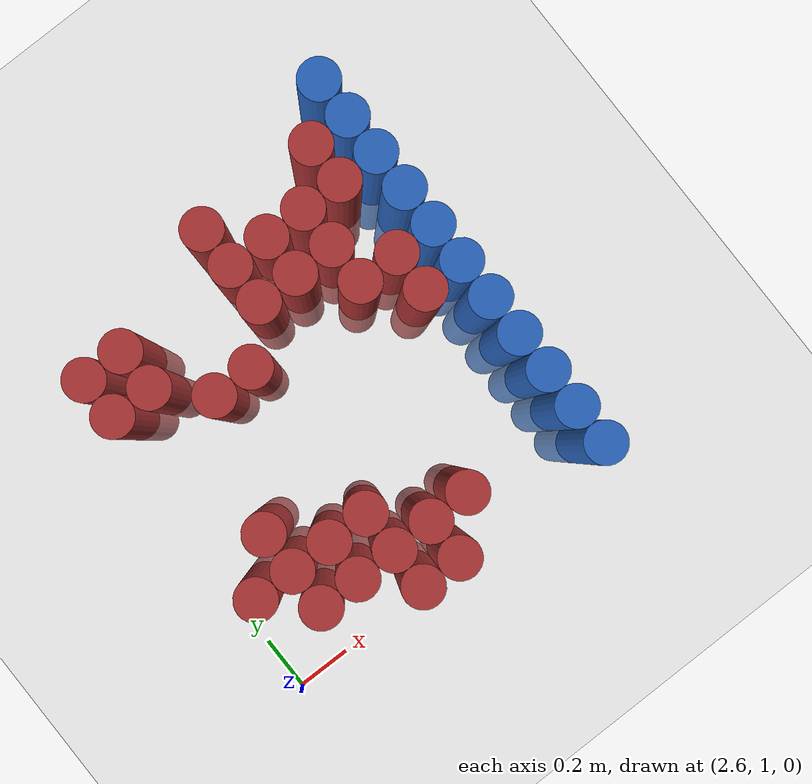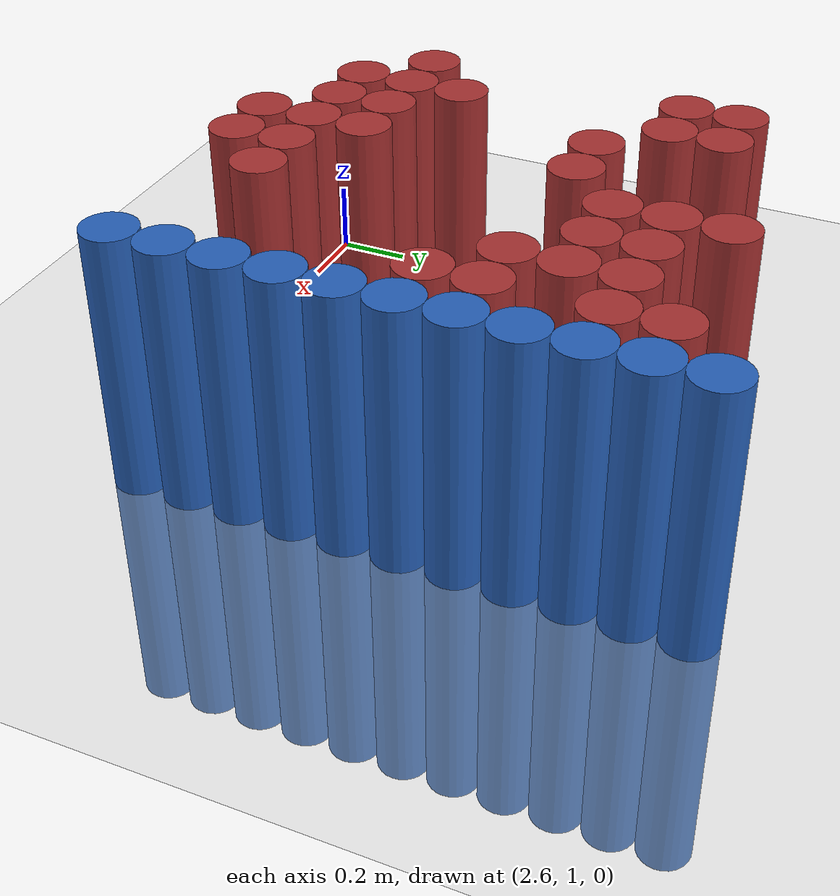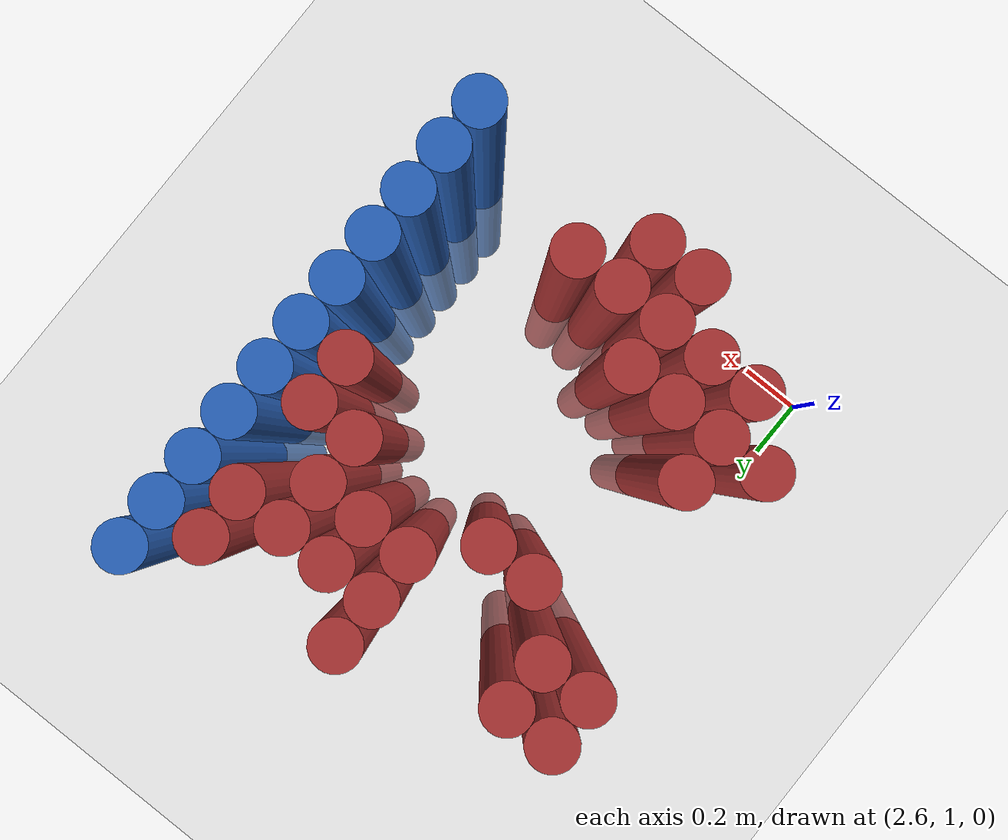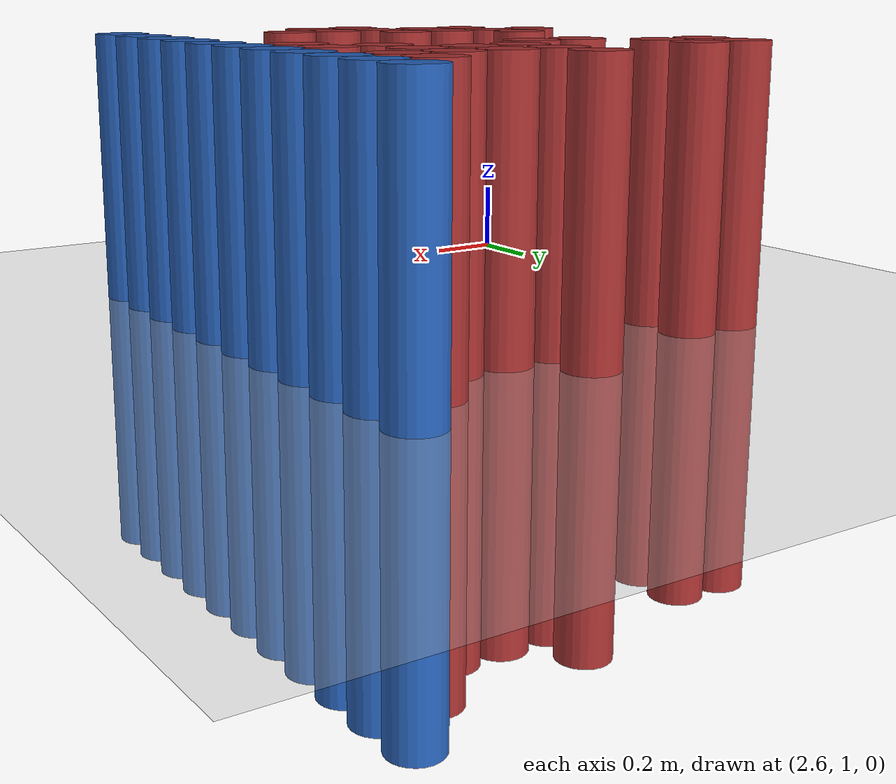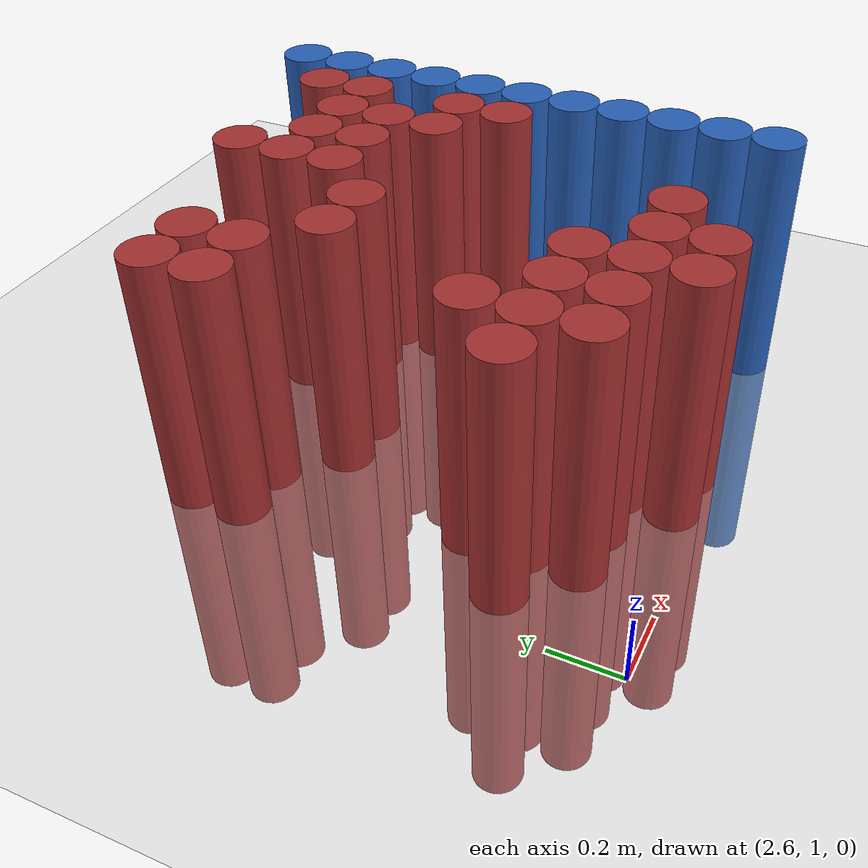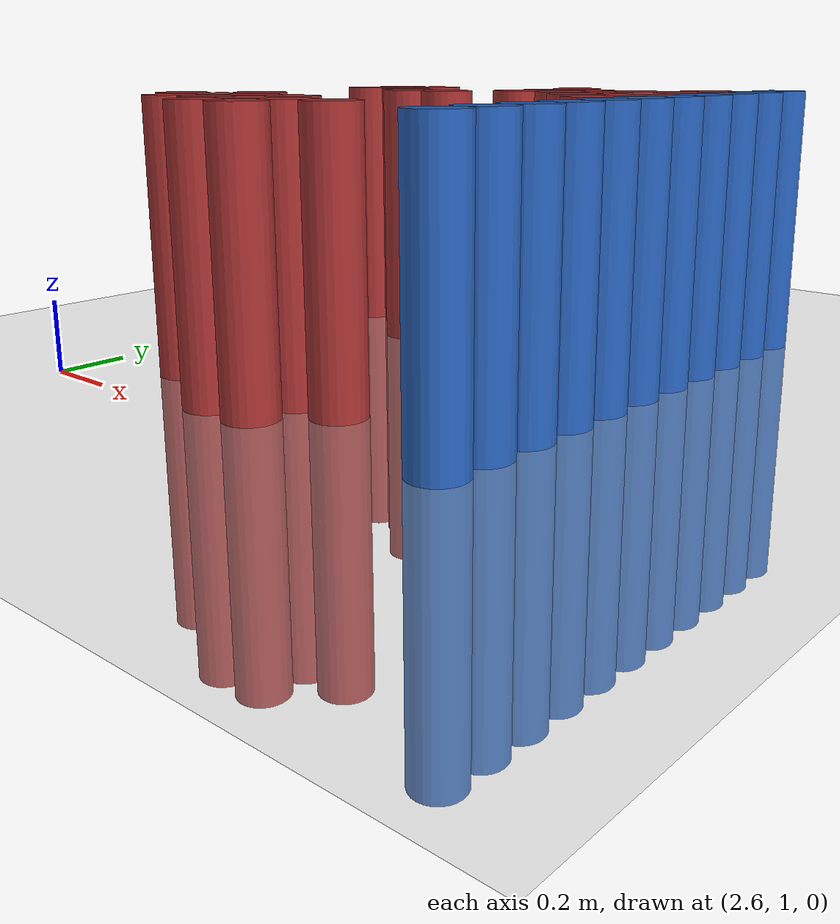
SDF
<sdf version="1.6">
 <world name="default">
  <model name="ground_plane">
   <static>1</static>
   <link name="link">
    <collision name="collision">
     <geometry><plane><normal>0 0 1</normal><size>100 100</size></plane></geometry>
     <surface><friction><ode><mu>100</mu><mu2>50</mu2></ode></friction></surface>
    </collision>
    <visual name="visual">
     <cast_shadows>0</cast_shadows>
     <geometry><plane><normal>0 0 1</normal><size>100 100</size></plane></geometry>
     <material>
      <script><uri>file://media/materials/scripts/gazebo.material</uri><name>Gazebo/Grey</name></script>
     </material>
    </visual>
   </link>
  </model>
  <model name="unit_cylinder_130">
   <static>1</static>
   <pose>3.925000 1.225000 0.000000 0.000000 0.000000 0.000000</pose>
   <link name="link">
    <inertial>
     <mass>1</mass>
     <inertia><ixx>0.145833</ixx><ixy>0</ixy><ixz>0</ixz><iyy>0.145833</iyy><iyz>0</iyz><izz>0.125</izz></inertia>
    </inertial>
    <collision name="collision">
     <geometry><cylinder><radius>0.075000</radius><length>1.5</length></cylinder></geometry>
    </collision>
    <visual name="visual">
     <geometry><cylinder><radius>0.075000</radius><length>1.5</length></cylinder></geometry>
     <material>
      <ambient>0.152000 0.379000 0.720000 1</ambient>
      <diffuse>0.152000 0.379000 0.720000 1</diffuse>
     </material>
     <material>
      <script><name>Gazebo/Grey</name><uri>file://media/materials/scripts/gazebo.material</uri></script>
     </material>
    </visual>
   </link>
  </model>
  <model name="unit_cylinder_132">
   <static>1</static>
   <pose>3.925000 1.375000 0.000000 0.000000 0.000000 0.000000</pose>
   <link name="link">
    <inertial>
     <mass>1</mass>
     <inertia><ixx>0.145833</ixx><ixy>0</ixy><ixz>0</ixz><iyy>0.145833</iyy><iyz>0</iyz><izz>0.125</izz></inertia>
    </inertial>
    <collision name="collision">
     <geometry><cylinder><radius>0.075000</radius><length>1.5</length></cylinder></geometry>
    </collision>
    <visual name="visual">
     <geometry><cylinder><radius>0.075000</radius><length>1.5</length></cylinder></geometry>
     <material>
      <ambient>0.152000 0.379000 0.720000 1</ambient>
      <diffuse>0.152000 0.379000 0.720000 1</diffuse>
     </material>
     <material>
      <script><name>Gazebo/Grey</name><uri>file://media/materials/scripts/gazebo.material</uri></script>
     </material>
    </visual>
   </link>
  </model>
  <model name="unit_cylinder_134">
   <static>1</static>
   <pose>3.925000 1.525000 0.000000 0.000000 0.000000 0.000000</pose>
   <link name="link">
    <inertial>
     <mass>1</mass>
     <inertia><ixx>0.145833</ixx><ixy>0</ixy><ixz>0</ixz><iyy>0.145833</iyy><iyz>0</iyz><izz>0.125</izz></inertia>
    </inertial>
    <collision name="collision">
     <geometry><cylinder><radius>0.075000</radius><length>1.5</length></cylinder></geometry>
    </collision>
    <visual name="visual">
     <geometry><cylinder><radius>0.075000</radius><length>1.5</length></cylinder></geometry>
     <material>
      <ambient>0.152000 0.379000 0.720000 1</ambient>
      <diffuse>0.152000 0.379000 0.720000 1</diffuse>
     </material>
     <material>
      <script><name>Gazebo/Grey</name><uri>file://media/materials/scripts/gazebo.material</uri></script>
     </material>
    </visual>
   </link>
  </model>
  <model name="unit_cylinder_136">
   <static>1</static>
   <pose>3.925000 1.675000 0.000000 0.000000 0.000000 0.000000</pose>
   <link name="link">
    <inertial>
     <mass>1</mass>
     <inertia><ixx>0.145833</ixx><ixy>0</ixy><ixz>0</ixz><iyy>0.145833</iyy><iyz>0</iyz><izz>0.125</izz></inertia>
    </inertial>
    <collision name="collision">
     <geometry><cylinder><radius>0.075000</radius><length>1.5</length></cylinder></geometry>
    </collision>
    <visual name="visual">
     <geometry><cylinder><radius>0.075000</radius><length>1.5</length></cylinder></geometry>
     <material>
      <ambient>0.152000 0.379000 0.720000 1</ambient>
      <diffuse>0.152000 0.379000 0.720000 1</diffuse>
     </material>
     <material>
      <script><name>Gazebo/Grey</name><uri>file://media/materials/scripts/gazebo.material</uri></script>
     </material>
    </visual>
   </link>
  </model>
  <model name="unit_cylinder_138">
   <static>1</static>
   <pose>3.925000 1.825000 0.000000 0.000000 0.000000 0.000000</pose>
   <link name="link">
    <inertial>
     <mass>1</mass>
     <inertia><ixx>0.145833</ixx><ixy>0</ixy><ixz>0</ixz><iyy>0.145833</iyy><iyz>0</iyz><izz>0.125</izz></inertia>
    </inertial>
    <collision name="collision">
     <geometry><cylinder><radius>0.075000</radius><length>1.5</length></cylinder></geometry>
    </collision>
    <visual name="visual">
     <geometry><cylinder><radius>0.075000</radius><length>1.5</length></cylinder></geometry>
     <material>
      <ambient>0.152000 0.379000 0.720000 1</ambient>
      <diffuse>0.152000 0.379000 0.720000 1</diffuse>
     </material>
     <material>
      <script><name>Gazebo/Grey</name><uri>file://media/materials/scripts/gazebo.material</uri></script>
     </material>
    </visual>
   </link>
  </model>
  <model name="unit_cylinder_140">
   <static>1</static>
   <pose>3.925000 1.975000 0.000000 0.000000 0.000000 0.000000</pose>
   <link name="link">
    <inertial>
     <mass>1</mass>
     <inertia><ixx>0.145833</ixx><ixy>0</ixy><ixz>0</ixz><iyy>0.145833</iyy><iyz>0</iyz><izz>0.125</izz></inertia>
    </inertial>
    <collision name="collision">
     <geometry><cylinder><radius>0.075000</radius><length>1.5</length></cylinder></geometry>
    </collision>
    <visual name="visual">
     <geometry><cylinder><radius>0.075000</radius><length>1.5</length></cylinder></geometry>
     <material>
      <ambient>0.152000 0.379000 0.720000 1</ambient>
      <diffuse>0.152000 0.379000 0.720000 1</diffuse>
     </material>
     <material>
      <script><name>Gazebo/Grey</name><uri>file://media/materials/scripts/gazebo.material</uri></script>
     </material>
    </visual>
   </link>
  </model>
  <model name="unit_cylinder_142">
   <static>1</static>
   <pose>3.925000 2.125000 0.000000 0.000000 0.000000 0.000000</pose>
   <link name="link">
    <inertial>
     <mass>1</mass>
     <inertia><ixx>0.145833</ixx><ixy>0</ixy><ixz>0</ixz><iyy>0.145833</iyy><iyz>0</iyz><izz>0.125</izz></inertia>
    </inertial>
    <collision name="collision">
     <geometry><cylinder><radius>0.075000</radius><length>1.5</length></cylinder></geometry>
    </collision>
    <visual name="visual">
     <geometry><cylinder><radius>0.075000</radius><length>1.5</length></cylinder></geometry>
     <material>
      <ambient>0.152000 0.379000 0.720000 1</ambient>
      <diffuse>0.152000 0.379000 0.720000 1</diffuse>
     </material>
     <material>
      <script><name>Gazebo/Grey</name><uri>file://media/materials/scripts/gazebo.material</uri></script>
     </material>
    </visual>
   </link>
  </model>
  <model name="unit_cylinder_144">
   <static>1</static>
   <pose>3.925000 2.275000 0.000000 0.000000 0.000000 0.000000</pose>
   <link name="link">
    <inertial>
     <mass>1</mass>
     <inertia><ixx>0.145833</ixx><ixy>0</ixy><ixz>0</ixz><iyy>0.145833</iyy><iyz>0</iyz><izz>0.125</izz></inertia>
    </inertial>
    <collision name="collision">
     <geometry><cylinder><radius>0.075000</radius><length>1.5</length></cylinder></geometry>
    </collision>
    <visual name="visual">
     <geometry><cylinder><radius>0.075000</radius><length>1.5</length></cylinder></geometry>
     <material>
      <ambient>0.152000 0.379000 0.720000 1</ambient>
      <diffuse>0.152000 0.379000 0.720000 1</diffuse>
     </material>
     <material>
      <script><name>Gazebo/Grey</name><uri>file://media/materials/scripts/gazebo.material</uri></script>
     </material>
    </visual>
   </link>
  </model>
  <model name="unit_cylinder_146">
   <static>1</static>
   <pose>3.925000 2.425000 0.000000 0.000000 0.000000 0.000000</pose>
   <link name="link">
    <inertial>
     <mass>1</mass>
     <inertia><ixx>0.145833</ixx><ixy>0</ixy><ixz>0</ixz><iyy>0.145833</iyy><iyz>0</iyz><izz>0.125</izz></inertia>
    </inertial>
    <collision name="collision">
     <geometry><cylinder><radius>0.075000</radius><length>1.5</length></cylinder></geometry>
    </collision>
    <visual name="visual">
     <geometry><cylinder><radius>0.075000</radius><length>1.5</length></cylinder></geometry>
     <material>
      <ambient>0.152000 0.379000 0.720000 1</ambient>
      <diffuse>0.152000 0.379000 0.720000 1</diffuse>
     </material>
     <material>
      <script><name>Gazebo/Grey</name><uri>file://media/materials/scripts/gazebo.material</uri></script>
     </material>
    </visual>
   </link>
  </model>
  <model name="unit_cylinder_148">
   <static>1</static>
   <pose>3.925000 2.575000 0.000000 0.000000 0.000000 0.000000</pose>
   <link name="link">
    <inertial>
     <mass>1</mass>
     <inertia><ixx>0.145833</ixx><ixy>0</ixy><ixz>0</ixz><iyy>0.145833</iyy><iyz>0</iyz><izz>0.125</izz></inertia>
    </inertial>
    <collision name="collision">
     <geometry><cylinder><radius>0.075000</radius><length>1.5</length></cylinder></geometry>
    </collision>
    <visual name="visual">
     <geometry><cylinder><radius>0.075000</radius><length>1.5</length></cylinder></geometry>
     <material>
      <ambient>0.152000 0.379000 0.720000 1</ambient>
      <diffuse>0.152000 0.379000 0.720000 1</diffuse>
     </material>
     <material>
      <script><name>Gazebo/Grey</name><uri>file://media/materials/scripts/gazebo.material</uri></script>
     </material>
    </visual>
   </link>
  </model>
  <model name="unit_cylinder_516">
   <static>1</static>
   <pose>2.725000 1.375000 0.000000 0.000000 0.000000 0.000000</pose>
   <link name="link">
    <inertial>
     <mass>1</mass>
     <inertia><ixx>0.145833</ixx><ixy>0</ixy><ixz>0</ixz><iyy>0.145833</iyy><iyz>0</iyz><izz>0.125</izz></inertia>
    </inertial>
    <collision name="collision">
     <geometry><cylinder><radius>0.075000</radius><length>1.5</length></cylinder></geometry>
    </collision>
    <visual name="visual">
     <geometry><cylinder><radius>0.075000</radius><length>1.5</length></cylinder></geometry>
     <material>
      <ambient>0.648000 0.192000 0.192000 1</ambient>
      <diffuse>0.648000 0.192000 0.192000 1</diffuse>
     </material>
     <material>
      <script><name>Gazebo/Grey</name><uri>file://media/materials/scripts/gazebo.material</uri></script>
     </material>
    </visual>
   </link>
  </model>
  <model name="unit_cylinder_517">
   <static>1</static>
   <pose>2.725000 2.125000 0.000000 0.000000 0.000000 0.000000</pose>
   <link name="link">
    <inertial>
     <mass>1</mass>
     <inertia><ixx>0.145833</ixx><ixy>0</ixy><ixz>0</ixz><iyy>0.145833</iyy><iyz>0</iyz><izz>0.125</izz></inertia>
    </inertial>
    <collision name="collision">
     <geometry><cylinder><radius>0.075000</radius><length>1.5</length></cylinder></geometry>
    </collision>
    <visual name="visual">
     <geometry><cylinder><radius>0.075000</radius><length>1.5</length></cylinder></geometry>
     <material>
      <ambient>0.648000 0.192000 0.192000 1</ambient>
      <diffuse>0.648000 0.192000 0.192000 1</diffuse>
     </material>
     <material>
      <script><name>Gazebo/Grey</name><uri>file://media/materials/scripts/gazebo.material</uri></script>
     </material>
    </visual>
   </link>
  </model>
  <model name="unit_cylinder_518">
   <static>1</static>
   <pose>2.725000 2.275000 0.000000 0.000000 0.000000 0.000000</pose>
   <link name="link">
    <inertial>
     <mass>1</mass>
     <inertia><ixx>0.145833</ixx><ixy>0</ixy><ixz>0</ixz><iyy>0.145833</iyy><iyz>0</iyz><izz>0.125</izz></inertia>
    </inertial>
    <collision name="collision">
     <geometry><cylinder><radius>0.075000</radius><length>1.5</length></cylinder></geometry>
    </collision>
    <visual name="visual">
     <geometry><cylinder><radius>0.075000</radius><length>1.5</length></cylinder></geometry>
     <material>
      <ambient>0.648000 0.192000 0.192000 1</ambient>
      <diffuse>0.648000 0.192000 0.192000 1</diffuse>
     </material>
     <material>
      <script><name>Gazebo/Grey</name><uri>file://media/materials/scripts/gazebo.material</uri></script>
     </material>
    </visual>
   </link>
  </model>
  <model name="unit_cylinder_524">
   <static>1</static>
   <pose>2.875000 1.225000 0.000000 0.000000 0.000000 0.000000</pose>
   <link name="link">
    <inertial>
     <mass>1</mass>
     <inertia><ixx>0.145833</ixx><ixy>0</ixy><ixz>0</ixz><iyy>0.145833</iyy><iyz>0</iyz><izz>0.125</izz></inertia>
    </inertial>
    <collision name="collision">
     <geometry><cylinder><radius>0.075000</radius><length>1.5</length></cylinder></geometry>
    </collision>
    <visual name="visual">
     <geometry><cylinder><radius>0.075000</radius><length>1.5</length></cylinder></geometry>
     <material>
      <ambient>0.648000 0.192000 0.192000 1</ambient>
      <diffuse>0.648000 0.192000 0.192000 1</diffuse>
     </material>
     <material>
      <script><name>Gazebo/Grey</name><uri>file://media/materials/scripts/gazebo.material</uri></script>
     </material>
    </visual>
   </link>
  </model>
  <model name="unit_cylinder_525">
   <static>1</static>
   <pose>2.875000 1.375000 0.000000 0.000000 0.000000 0.000000</pose>
   <link name="link">
    <inertial>
     <mass>1</mass>
     <inertia><ixx>0.145833</ixx><ixy>0</ixy><ixz>0</ixz><iyy>0.145833</iyy><iyz>0</iyz><izz>0.125</izz></inertia>
    </inertial>
    <collision name="collision">
     <geometry><cylinder><radius>0.075000</radius><length>1.5</length></cylinder></geometry>
    </collision>
    <visual name="visual">
     <geometry><cylinder><radius>0.075000</radius><length>1.5</length></cylinder></geometry>
     <material>
      <ambient>0.648000 0.192000 0.192000 1</ambient>
      <diffuse>0.648000 0.192000 0.192000 1</diffuse>
     </material>
     <material>
      <script><name>Gazebo/Grey</name><uri>file://media/materials/scripts/gazebo.material</uri></script>
     </material>
    </visual>
   </link>
  </model>
  <model name="unit_cylinder_526">
   <static>1</static>
   <pose>2.875000 1.525000 0.000000 0.000000 0.000000 0.000000</pose>
   <link name="link">
    <inertial>
     <mass>1</mass>
     <inertia><ixx>0.145833</ixx><ixy>0</ixy><ixz>0</ixz><iyy>0.145833</iyy><iyz>0</iyz><izz>0.125</izz></inertia>
    </inertial>
    <collision name="collision">
     <geometry><cylinder><radius>0.075000</radius><length>1.5</length></cylinder></geometry>
    </collision>
    <visual name="visual">
     <geometry><cylinder><radius>0.075000</radius><length>1.5</length></cylinder></geometry>
     <material>
      <ambient>0.648000 0.192000 0.192000 1</ambient>
      <diffuse>0.648000 0.192000 0.192000 1</diffuse>
     </material>
     <material>
      <script><name>Gazebo/Grey</name><uri>file://media/materials/scripts/gazebo.material</uri></script>
     </material>
    </visual>
   </link>
  </model>
  <model name="unit_cylinder_527">
   <static>1</static>
   <pose>2.875000 2.125000 0.000000 0.000000 0.000000 0.000000</pose>
   <link name="link">
    <inertial>
     <mass>1</mass>
     <inertia><ixx>0.145833</ixx><ixy>0</ixy><ixz>0</ixz><iyy>0.145833</iyy><iyz>0</iyz><izz>0.125</izz></inertia>
    </inertial>
    <collision name="collision">
     <geometry><cylinder><radius>0.075000</radius><length>1.5</length></cylinder></geometry>
    </collision>
    <visual name="visual">
     <geometry><cylinder><radius>0.075000</radius><length>1.5</length></cylinder></geometry>
     <material>
      <ambient>0.648000 0.192000 0.192000 1</ambient>
      <diffuse>0.648000 0.192000 0.192000 1</diffuse>
     </material>
     <material>
      <script><name>Gazebo/Grey</name><uri>file://media/materials/scripts/gazebo.material</uri></script>
     </material>
    </visual>
   </link>
  </model>
  <model name="unit_cylinder_528">
   <static>1</static>
   <pose>2.875000 2.275000 0.000000 0.000000 0.000000 0.000000</pose>
   <link name="link">
    <inertial>
     <mass>1</mass>
     <inertia><ixx>0.145833</ixx><ixy>0</ixy><ixz>0</ixz><iyy>0.145833</iyy><iyz>0</iyz><izz>0.125</izz></inertia>
    </inertial>
    <collision name="collision">
     <geometry><cylinder><radius>0.075000</radius><length>1.5</length></cylinder></geometry>
    </collision>
    <visual name="visual">
     <geometry><cylinder><radius>0.075000</radius><length>1.5</length></cylinder></geometry>
     <material>
      <ambient>0.648000 0.192000 0.192000 1</ambient>
      <diffuse>0.648000 0.192000 0.192000 1</diffuse>
     </material>
     <material>
      <script><name>Gazebo/Grey</name><uri>file://media/materials/scripts/gazebo.material</uri></script>
     </material>
    </visual>
   </link>
  </model>
  <model name="unit_cylinder_532">
   <static>1</static>
   <pose>3.025000 1.225000 0.000000 0.000000 0.000000 0.000000</pose>
   <link name="link">
    <inertial>
     <mass>1</mass>
     <inertia><ixx>0.145833</ixx><ixy>0</ixy><ixz>0</ixz><iyy>0.145833</iyy><iyz>0</iyz><izz>0.125</izz></inertia>
    </inertial>
    <collision name="collision">
     <geometry><cylinder><radius>0.075000</radius><length>1.5</length></cylinder></geometry>
    </collision>
    <visual name="visual">
     <geometry><cylinder><radius>0.075000</radius><length>1.5</length></cylinder></geometry>
     <material>
      <ambient>0.648000 0.192000 0.192000 1</ambient>
      <diffuse>0.648000 0.192000 0.192000 1</diffuse>
     </material>
     <material>
      <script><name>Gazebo/Grey</name><uri>file://media/materials/scripts/gazebo.material</uri></script>
     </material>
    </visual>
   </link>
  </model>
  <model name="unit_cylinder_533">
   <static>1</static>
   <pose>3.025000 1.375000 0.000000 0.000000 0.000000 0.000000</pose>
   <link name="link">
    <inertial>
     <mass>1</mass>
     <inertia><ixx>0.145833</ixx><ixy>0</ixy><ixz>0</ixz><iyy>0.145833</iyy><iyz>0</iyz><izz>0.125</izz></inertia>
    </inertial>
    <collision name="collision">
     <geometry><cylinder><radius>0.075000</radius><length>1.5</length></cylinder></geometry>
    </collision>
    <visual name="visual">
     <geometry><cylinder><radius>0.075000</radius><length>1.5</length></cylinder></geometry>
     <material>
      <ambient>0.648000 0.192000 0.192000 1</ambient>
      <diffuse>0.648000 0.192000 0.192000 1</diffuse>
     </material>
     <material>
      <script><name>Gazebo/Grey</name><uri>file://media/materials/scripts/gazebo.material</uri></script>
     </material>
    </visual>
   </link>
  </model>
  <model name="unit_cylinder_534">
   <static>1</static>
   <pose>3.025000 1.975000 0.000000 0.000000 0.000000 0.000000</pose>
   <link name="link">
    <inertial>
     <mass>1</mass>
     <inertia><ixx>0.145833</ixx><ixy>0</ixy><ixz>0</ixz><iyy>0.145833</iyy><iyz>0</iyz><izz>0.125</izz></inertia>
    </inertial>
    <collision name="collision">
     <geometry><cylinder><radius>0.075000</radius><length>1.5</length></cylinder></geometry>
    </collision>
    <visual name="visual">
     <geometry><cylinder><radius>0.075000</radius><length>1.5</length></cylinder></geometry>
     <material>
      <ambient>0.648000 0.192000 0.192000 1</ambient>
      <diffuse>0.648000 0.192000 0.192000 1</diffuse>
     </material>
     <material>
      <script><name>Gazebo/Grey</name><uri>file://media/materials/scripts/gazebo.material</uri></script>
     </material>
    </visual>
   </link>
  </model>
  <model name="unit_cylinder_541">
   <static>1</static>
   <pose>3.175000 1.075000 0.000000 0.000000 0.000000 0.000000</pose>
   <link name="link">
    <inertial>
     <mass>1</mass>
     <inertia><ixx>0.145833</ixx><ixy>0</ixy><ixz>0</ixz><iyy>0.145833</iyy><iyz>0</iyz><izz>0.125</izz></inertia>
    </inertial>
    <collision name="collision">
     <geometry><cylinder><radius>0.075000</radius><length>1.5</length></cylinder></geometry>
    </collision>
    <visual name="visual">
     <geometry><cylinder><radius>0.075000</radius><length>1.5</length></cylinder></geometry>
     <material>
      <ambient>0.648000 0.192000 0.192000 1</ambient>
      <diffuse>0.648000 0.192000 0.192000 1</diffuse>
     </material>
     <material>
      <script><name>Gazebo/Grey</name><uri>file://media/materials/scripts/gazebo.material</uri></script>
     </material>
    </visual>
   </link>
  </model>
  <model name="unit_cylinder_542">
   <static>1</static>
   <pose>3.175000 1.225000 0.000000 0.000000 0.000000 0.000000</pose>
   <link name="link">
    <inertial>
     <mass>1</mass>
     <inertia><ixx>0.145833</ixx><ixy>0</ixy><ixz>0</ixz><iyy>0.145833</iyy><iyz>0</iyz><izz>0.125</izz></inertia>
    </inertial>
    <collision name="collision">
     <geometry><cylinder><radius>0.075000</radius><length>1.5</length></cylinder></geometry>
    </collision>
    <visual name="visual">
     <geometry><cylinder><radius>0.075000</radius><length>1.5</length></cylinder></geometry>
     <material>
      <ambient>0.648000 0.192000 0.192000 1</ambient>
      <diffuse>0.648000 0.192000 0.192000 1</diffuse>
     </material>
     <material>
      <script><name>Gazebo/Grey</name><uri>file://media/materials/scripts/gazebo.material</uri></script>
     </material>
    </visual>
   </link>
  </model>
  <model name="unit_cylinder_543">
   <static>1</static>
   <pose>3.175000 1.375000 0.000000 0.000000 0.000000 0.000000</pose>
   <link name="link">
    <inertial>
     <mass>1</mass>
     <inertia><ixx>0.145833</ixx><ixy>0</ixy><ixz>0</ixz><iyy>0.145833</iyy><iyz>0</iyz><izz>0.125</izz></inertia>
    </inertial>
    <collision name="collision">
     <geometry><cylinder><radius>0.075000</radius><length>1.5</length></cylinder></geometry>
    </collision>
    <visual name="visual">
     <geometry><cylinder><radius>0.075000</radius><length>1.5</length></cylinder></geometry>
     <material>
      <ambient>0.648000 0.192000 0.192000 1</ambient>
      <diffuse>0.648000 0.192000 0.192000 1</diffuse>
     </material>
     <material>
      <script><name>Gazebo/Grey</name><uri>file://media/materials/scripts/gazebo.material</uri></script>
     </material>
    </visual>
   </link>
  </model>
  <model name="unit_cylinder_544">
   <static>1</static>
   <pose>3.175000 1.975000 0.000000 0.000000 0.000000 0.000000</pose>
   <link name="link">
    <inertial>
     <mass>1</mass>
     <inertia><ixx>0.145833</ixx><ixy>0</ixy><ixz>0</ixz><iyy>0.145833</iyy><iyz>0</iyz><izz>0.125</izz></inertia>
    </inertial>
    <collision name="collision">
     <geometry><cylinder><radius>0.075000</radius><length>1.5</length></cylinder></geometry>
    </collision>
    <visual name="visual">
     <geometry><cylinder><radius>0.075000</radius><length>1.5</length></cylinder></geometry>
     <material>
      <ambient>0.648000 0.192000 0.192000 1</ambient>
      <diffuse>0.648000 0.192000 0.192000 1</diffuse>
     </material>
     <material>
      <script><name>Gazebo/Grey</name><uri>file://media/materials/scripts/gazebo.material</uri></script>
     </material>
    </visual>
   </link>
  </model>
  <model name="unit_cylinder_550">
   <static>1</static>
   <pose>3.325000 1.075000 0.000000 0.000000 0.000000 0.000000</pose>
   <link name="link">
    <inertial>
     <mass>1</mass>
     <inertia><ixx>0.145833</ixx><ixy>0</ixy><ixz>0</ixz><iyy>0.145833</iyy><iyz>0</iyz><izz>0.125</izz></inertia>
    </inertial>
    <collision name="collision">
     <geometry><cylinder><radius>0.075000</radius><length>1.5</length></cylinder></geometry>
    </collision>
    <visual name="visual">
     <geometry><cylinder><radius>0.075000</radius><length>1.5</length></cylinder></geometry>
     <material>
      <ambient>0.648000 0.192000 0.192000 1</ambient>
      <diffuse>0.648000 0.192000 0.192000 1</diffuse>
     </material>
     <material>
      <script><name>Gazebo/Grey</name><uri>file://media/materials/scripts/gazebo.material</uri></script>
     </material>
    </visual>
   </link>
  </model>
  <model name="unit_cylinder_551">
   <static>1</static>
   <pose>3.325000 1.225000 0.000000 0.000000 0.000000 0.000000</pose>
   <link name="link">
    <inertial>
     <mass>1</mass>
     <inertia><ixx>0.145833</ixx><ixy>0</ixy><ixz>0</ixz><iyy>0.145833</iyy><iyz>0</iyz><izz>0.125</izz></inertia>
    </inertial>
    <collision name="collision">
     <geometry><cylinder><radius>0.075000</radius><length>1.5</length></cylinder></geometry>
    </collision>
    <visual name="visual">
     <geometry><cylinder><radius>0.075000</radius><length>1.5</length></cylinder></geometry>
     <material>
      <ambient>0.648000 0.192000 0.192000 1</ambient>
      <diffuse>0.648000 0.192000 0.192000 1</diffuse>
     </material>
     <material>
      <script><name>Gazebo/Grey</name><uri>file://media/materials/scripts/gazebo.material</uri></script>
     </material>
    </visual>
   </link>
  </model>
  <model name="unit_cylinder_552">
   <static>1</static>
   <pose>3.325000 2.125000 0.000000 0.000000 0.000000 0.000000</pose>
   <link name="link">
    <inertial>
     <mass>1</mass>
     <inertia><ixx>0.145833</ixx><ixy>0</ixy><ixz>0</ixz><iyy>0.145833</iyy><iyz>0</iyz><izz>0.125</izz></inertia>
    </inertial>
    <collision name="collision">
     <geometry><cylinder><radius>0.075000</radius><length>1.5</length></cylinder></geometry>
    </collision>
    <visual name="visual">
     <geometry><cylinder><radius>0.075000</radius><length>1.5</length></cylinder></geometry>
     <material>
      <ambient>0.648000 0.192000 0.192000 1</ambient>
      <diffuse>0.648000 0.192000 0.192000 1</diffuse>
     </material>
     <material>
      <script><name>Gazebo/Grey</name><uri>file://media/materials/scripts/gazebo.material</uri></script>
     </material>
    </visual>
   </link>
  </model>
  <model name="unit_cylinder_553">
   <static>1</static>
   <pose>3.325000 2.275000 0.000000 0.000000 0.000000 0.000000</pose>
   <link name="link">
    <inertial>
     <mass>1</mass>
     <inertia><ixx>0.145833</ixx><ixy>0</ixy><ixz>0</ixz><iyy>0.145833</iyy><iyz>0</iyz><izz>0.125</izz></inertia>
    </inertial>
    <collision name="collision">
     <geometry><cylinder><radius>0.075000</radius><length>1.5</length></cylinder></geometry>
    </collision>
    <visual name="visual">
     <geometry><cylinder><radius>0.075000</radius><length>1.5</length></cylinder></geometry>
     <material>
      <ambient>0.648000 0.192000 0.192000 1</ambient>
      <diffuse>0.648000 0.192000 0.192000 1</diffuse>
     </material>
     <material>
      <script><name>Gazebo/Grey</name><uri>file://media/materials/scripts/gazebo.material</uri></script>
     </material>
    </visual>
   </link>
  </model>
  <model name="unit_cylinder_554">
   <static>1</static>
   <pose>3.325000 2.425000 0.000000 0.000000 0.000000 0.000000</pose>
   <link name="link">
    <inertial>
     <mass>1</mass>
     <inertia><ixx>0.145833</ixx><ixy>0</ixy><ixz>0</ixz><iyy>0.145833</iyy><iyz>0</iyz><izz>0.125</izz></inertia>
    </inertial>
    <collision name="collision">
     <geometry><cylinder><radius>0.075000</radius><length>1.5</length></cylinder></geometry>
    </collision>
    <visual name="visual">
     <geometry><cylinder><radius>0.075000</radius><length>1.5</length></cylinder></geometry>
     <material>
      <ambient>0.648000 0.192000 0.192000 1</ambient>
      <diffuse>0.648000 0.192000 0.192000 1</diffuse>
     </material>
     <material>
      <script><name>Gazebo/Grey</name><uri>file://media/materials/scripts/gazebo.material</uri></script>
     </material>
    </visual>
   </link>
  </model>
  <model name="unit_cylinder_563">
   <static>1</static>
   <pose>3.475000 1.225000 0.000000 0.000000 0.000000 0.000000</pose>
   <link name="link">
    <inertial>
     <mass>1</mass>
     <inertia><ixx>0.145833</ixx><ixy>0</ixy><ixz>0</ixz><iyy>0.145833</iyy><iyz>0</iyz><izz>0.125</izz></inertia>
    </inertial>
    <collision name="collision">
     <geometry><cylinder><radius>0.075000</radius><length>1.5</length></cylinder></geometry>
    </collision>
    <visual name="visual">
     <geometry><cylinder><radius>0.075000</radius><length>1.5</length></cylinder></geometry>
     <material>
      <ambient>0.648000 0.192000 0.192000 1</ambient>
      <diffuse>0.648000 0.192000 0.192000 1</diffuse>
     </material>
     <material>
      <script><name>Gazebo/Grey</name><uri>file://media/materials/scripts/gazebo.material</uri></script>
     </material>
    </visual>
   </link>
  </model>
  <model name="unit_cylinder_564">
   <static>1</static>
   <pose>3.475000 2.125000 0.000000 0.000000 0.000000 0.000000</pose>
   <link name="link">
    <inertial>
     <mass>1</mass>
     <inertia><ixx>0.145833</ixx><ixy>0</ixy><ixz>0</ixz><iyy>0.145833</iyy><iyz>0</iyz><izz>0.125</izz></inertia>
    </inertial>
    <collision name="collision">
     <geometry><cylinder><radius>0.075000</radius><length>1.5</length></cylinder></geometry>
    </collision>
    <visual name="visual">
     <geometry><cylinder><radius>0.075000</radius><length>1.5</length></cylinder></geometry>
     <material>
      <ambient>0.648000 0.192000 0.192000 1</ambient>
      <diffuse>0.648000 0.192000 0.192000 1</diffuse>
     </material>
     <material>
      <script><name>Gazebo/Grey</name><uri>file://media/materials/scripts/gazebo.material</uri></script>
     </material>
    </visual>
   </link>
  </model>
  <model name="unit_cylinder_565">
   <static>1</static>
   <pose>3.475000 2.275000 0.000000 0.000000 0.000000 0.000000</pose>
   <link name="link">
    <inertial>
     <mass>1</mass>
     <inertia><ixx>0.145833</ixx><ixy>0</ixy><ixz>0</ixz><iyy>0.145833</iyy><iyz>0</iyz><izz>0.125</izz></inertia>
    </inertial>
    <collision name="collision">
     <geometry><cylinder><radius>0.075000</radius><length>1.5</length></cylinder></geometry>
    </collision>
    <visual name="visual">
     <geometry><cylinder><radius>0.075000</radius><length>1.5</length></cylinder></geometry>
     <material>
      <ambient>0.648000 0.192000 0.192000 1</ambient>
      <diffuse>0.648000 0.192000 0.192000 1</diffuse>
     </material>
     <material>
      <script><name>Gazebo/Grey</name><uri>file://media/materials/scripts/gazebo.material</uri></script>
     </material>
    </visual>
   </link>
  </model>
  <model name="unit_cylinder_574">
   <static>1</static>
   <pose>3.625000 1.975000 0.000000 0.000000 0.000000 0.000000</pose>
   <link name="link">
    <inertial>
     <mass>1</mass>
     <inertia><ixx>0.145833</ixx><ixy>0</ixy><ixz>0</ixz><iyy>0.145833</iyy><iyz>0</iyz><izz>0.125</izz></inertia>
    </inertial>
    <collision name="collision">
     <geometry><cylinder><radius>0.075000</radius><length>1.5</length></cylinder></geometry>
    </collision>
    <visual name="visual">
     <geometry><cylinder><radius>0.075000</radius><length>1.5</length></cylinder></geometry>
     <material>
      <ambient>0.648000 0.192000 0.192000 1</ambient>
      <diffuse>0.648000 0.192000 0.192000 1</diffuse>
     </material>
     <material>
      <script><name>Gazebo/Grey</name><uri>file://media/materials/scripts/gazebo.material</uri></script>
     </material>
    </visual>
   </link>
  </model>
  <model name="unit_cylinder_575">
   <static>1</static>
   <pose>3.625000 2.125000 0.000000 0.000000 0.000000 0.000000</pose>
   <link name="link">
    <inertial>
     <mass>1</mass>
     <inertia><ixx>0.145833</ixx><ixy>0</ixy><ixz>0</ixz><iyy>0.145833</iyy><iyz>0</iyz><izz>0.125</izz></inertia>
    </inertial>
    <collision name="collision">
     <geometry><cylinder><radius>0.075000</radius><length>1.5</length></cylinder></geometry>
    </collision>
    <visual name="visual">
     <geometry><cylinder><radius>0.075000</radius><length>1.5</length></cylinder></geometry>
     <material>
      <ambient>0.648000 0.192000 0.192000 1</ambient>
      <diffuse>0.648000 0.192000 0.192000 1</diffuse>
     </material>
     <material>
      <script><name>Gazebo/Grey</name><uri>file://media/materials/scripts/gazebo.material</uri></script>
     </material>
    </visual>
   </link>
  </model>
  <model name="unit_cylinder_576">
   <static>1</static>
   <pose>3.625000 2.275000 0.000000 0.000000 0.000000 0.000000</pose>
   <link name="link">
    <inertial>
     <mass>1</mass>
     <inertia><ixx>0.145833</ixx><ixy>0</ixy><ixz>0</ixz><iyy>0.145833</iyy><iyz>0</iyz><izz>0.125</izz></inertia>
    </inertial>
    <collision name="collision">
     <geometry><cylinder><radius>0.075000</radius><length>1.5</length></cylinder></geometry>
    </collision>
    <visual name="visual">
     <geometry><cylinder><radius>0.075000</radius><length>1.5</length></cylinder></geometry>
     <material>
      <ambient>0.648000 0.192000 0.192000 1</ambient>
      <diffuse>0.648000 0.192000 0.192000 1</diffuse>
     </material>
     <material>
      <script><name>Gazebo/Grey</name><uri>file://media/materials/scripts/gazebo.material</uri></script>
     </material>
    </visual>
   </link>
  </model>
  <model name="unit_cylinder_590">
   <static>1</static>
   <pose>3.775000 1.825000 0.000000 0.000000 0.000000 0.000000</pose>
   <link name="link">
    <inertial>
     <mass>1</mass>
     <inertia><ixx>0.145833</ixx><ixy>0</ixy><ixz>0</ixz><iyy>0.145833</iyy><iyz>0</iyz><izz>0.125</izz></inertia>
    </inertial>
    <collision name="collision">
     <geometry><cylinder><radius>0.075000</radius><length>1.5</length></cylinder></geometry>
    </collision>
    <visual name="visual">
     <geometry><cylinder><radius>0.075000</radius><length>1.5</length></cylinder></geometry>
     <material>
      <ambient>0.648000 0.192000 0.192000 1</ambient>
      <diffuse>0.648000 0.192000 0.192000 1</diffuse>
     </material>
     <material>
      <script><name>Gazebo/Grey</name><uri>file://media/materials/scripts/gazebo.material</uri></script>
     </material>
    </visual>
   </link>
  </model>
  <model name="unit_cylinder_591">
   <static>1</static>
   <pose>3.775000 1.975000 0.000000 0.000000 0.000000 0.000000</pose>
   <link name="link">
    <inertial>
     <mass>1</mass>
     <inertia><ixx>0.145833</ixx><ixy>0</ixy><ixz>0</ixz><iyy>0.145833</iyy><iyz>0</iyz><izz>0.125</izz></inertia>
    </inertial>
    <collision name="collision">
     <geometry><cylinder><radius>0.075000</radius><length>1.5</length></cylinder></geometry>
    </collision>
    <visual name="visual">
     <geometry><cylinder><radius>0.075000</radius><length>1.5</length></cylinder></geometry>
     <material>
      <ambient>0.648000 0.192000 0.192000 1</ambient>
      <diffuse>0.648000 0.192000 0.192000 1</diffuse>
     </material>
     <material>
      <script><name>Gazebo/Grey</name><uri>file://media/materials/scripts/gazebo.material</uri></script>
     </material>
    </visual>
   </link>
  </model>
  <model name="unit_cylinder_592">
   <static>1</static>
   <pose>3.775000 2.275000 0.000000 0.000000 0.000000 0.000000</pose>
   <link name="link">
    <inertial>
     <mass>1</mass>
     <inertia><ixx>0.145833</ixx><ixy>0</ixy><ixz>0</ixz><iyy>0.145833</iyy><iyz>0</iyz><izz>0.125</izz></inertia>
    </inertial>
    <collision name="collision">
     <geometry><cylinder><radius>0.075000</radius><length>1.5</length></cylinder></geometry>
    </collision>
    <visual name="visual">
     <geometry><cylinder><radius>0.075000</radius><length>1.5</length></cylinder></geometry>
     <material>
      <ambient>0.648000 0.192000 0.192000 1</ambient>
      <diffuse>0.648000 0.192000 0.192000 1</diffuse>
     </material>
     <material>
      <script><name>Gazebo/Grey</name><uri>file://media/materials/scripts/gazebo.material</uri></script>
     </material>
    </visual>
   </link>
  </model>
  <model name="unit_cylinder_593">
   <static>1</static>
   <pose>3.775000 2.425000 0.000000 0.000000 0.000000 0.000000</pose>
   <link name="link">
    <inertial>
     <mass>1</mass>
     <inertia><ixx>0.145833</ixx><ixy>0</ixy><ixz>0</ixz><iyy>0.145833</iyy><iyz>0</iyz><izz>0.125</izz></inertia>
    </inertial>
    <collision name="collision">
     <geometry><cylinder><radius>0.075000</radius><length>1.5</length></cylinder></geometry>
    </collision>
    <visual name="visual">
     <geometry><cylinder><radius>0.075000</radius><length>1.5</length></cylinder></geometry>
     <material>
      <ambient>0.648000 0.192000 0.192000 1</ambient>
      <diffuse>0.648000 0.192000 0.192000 1</diffuse>
     </material>
     <material>
      <script><name>Gazebo/Grey</name><uri>file://media/materials/scripts/gazebo.material</uri></script>
     </material>
    </visual>
   </link>
  </model>
  <model name="unit_cylinder_627">
   <static>1</static>
   <pose>3.925000 1.075000 0.000000 0.000000 0.000000 0.000000</pose>
   <link name="link">
    <inertial>
     <mass>1</mass>
     <inertia><ixx>0.145833</ixx><ixy>0</ixy><ixz>0</ixz><iyy>0.145833</iyy><iyz>0</iyz><izz>0.125</izz></inertia>
    </inertial>
    <collision name="collision">
     <geometry><cylinder><radius>0.075000</radius><length>1.5</length></cylinder></geometry>
    </collision>
    <visual name="visual">
     <geometry><cylinder><radius>0.075000</radius><length>1.5</length></cylinder></geometry>
     <material>
      <ambient>0.152000 0.379000 0.720000 1</ambient>
      <diffuse>0.152000 0.379000 0.720000 1</diffuse>
     </material>
     <material>
      <script><name>Gazebo/Grey</name><uri>file://media/materials/scripts/gazebo.material</uri></script>
     </material>
    </visual>
   </link>
  </model>
  <model name="unit_cylinder_628">
   <static>1</static>
   <pose>3.925000 1.225000 0.000000 0.000000 0.000000 0.000000</pose>
   <link name="link">
    <inertial>
     <mass>1</mass>
     <inertia><ixx>0.145833</ixx><ixy>0</ixy><ixz>0</ixz><iyy>0.145833</iyy><iyz>0</iyz><izz>0.125</izz></inertia>
    </inertial>
    <collision name="collision">
     <geometry><cylinder><radius>0.075000</radius><length>1.5</length></cylinder></geometry>
    </collision>
    <visual name="visual">
     <geometry><cylinder><radius>0.075000</radius><length>1.5</length></cylinder></geometry>
     <material>
      <ambient>0.152000 0.379000 0.720000 1</ambient>
      <diffuse>0.152000 0.379000 0.720000 1</diffuse>
     </material>
     <material>
      <script><name>Gazebo/Grey</name><uri>file://media/materials/scripts/gazebo.material</uri></script>
     </material>
    </visual>
   </link>
  </model>
  <model name="unit_cylinder_629">
   <static>1</static>
   <pose>3.925000 1.375000 0.000000 0.000000 0.000000 0.000000</pose>
   <link name="link">
    <inertial>
     <mass>1</mass>
     <inertia><ixx>0.145833</ixx><ixy>0</ixy><ixz>0</ixz><iyy>0.145833</iyy><iyz>0</iyz><izz>0.125</izz></inertia>
    </inertial>
    <collision name="collision">
     <geometry><cylinder><radius>0.075000</radius><length>1.5</length></cylinder></geometry>
    </collision>
    <visual name="visual">
     <geometry><cylinder><radius>0.075000</radius><length>1.5</length></cylinder></geometry>
     <material>
      <ambient>0.152000 0.379000 0.720000 1</ambient>
      <diffuse>0.152000 0.379000 0.720000 1</diffuse>
     </material>
     <material>
      <script><name>Gazebo/Grey</name><uri>file://media/materials/scripts/gazebo.material</uri></script>
     </material>
    </visual>
   </link>
  </model>
  <model name="unit_cylinder_630">
   <static>1</static>
   <pose>3.925000 1.525000 0.000000 0.000000 0.000000 0.000000</pose>
   <link name="link">
    <inertial>
     <mass>1</mass>
     <inertia><ixx>0.145833</ixx><ixy>0</ixy><ixz>0</ixz><iyy>0.145833</iyy><iyz>0</iyz><izz>0.125</izz></inertia>
    </inertial>
    <collision name="collision">
     <geometry><cylinder><radius>0.075000</radius><length>1.5</length></cylinder></geometry>
    </collision>
    <visual name="visual">
     <geometry><cylinder><radius>0.075000</radius><length>1.5</length></cylinder></geometry>
     <material>
      <ambient>0.152000 0.379000 0.720000 1</ambient>
      <diffuse>0.152000 0.379000 0.720000 1</diffuse>
     </material>
     <material>
      <script><name>Gazebo/Grey</name><uri>file://media/materials/scripts/gazebo.material</uri></script>
     </material>
    </visual>
   </link>
  </model>
  <model name="unit_cylinder_631">
   <static>1</static>
   <pose>3.925000 1.675000 0.000000 0.000000 0.000000 0.000000</pose>
   <link name="link">
    <inertial>
     <mass>1</mass>
     <inertia><ixx>0.145833</ixx><ixy>0</ixy><ixz>0</ixz><iyy>0.145833</iyy><iyz>0</iyz><izz>0.125</izz></inertia>
    </inertial>
    <collision name="collision">
     <geometry><cylinder><radius>0.075000</radius><length>1.5</length></cylinder></geometry>
    </collision>
    <visual name="visual">
     <geometry><cylinder><radius>0.075000</radius><length>1.5</length></cylinder></geometry>
     <material>
      <ambient>0.152000 0.379000 0.720000 1</ambient>
      <diffuse>0.152000 0.379000 0.720000 1</diffuse>
     </material>
     <material>
      <script><name>Gazebo/Grey</name><uri>file://media/materials/scripts/gazebo.material</uri></script>
     </material>
    </visual>
   </link>
  </model>
  <model name="unit_cylinder_632">
   <static>1</static>
   <pose>3.925000 1.825000 0.000000 0.000000 0.000000 0.000000</pose>
   <link name="link">
    <inertial>
     <mass>1</mass>
     <inertia><ixx>0.145833</ixx><ixy>0</ixy><ixz>0</ixz><iyy>0.145833</iyy><iyz>0</iyz><izz>0.125</izz></inertia>
    </inertial>
    <collision name="collision">
     <geometry><cylinder><radius>0.075000</radius><length>1.5</length></cylinder></geometry>
    </collision>
    <visual name="visual">
     <geometry><cylinder><radius>0.075000</radius><length>1.5</length></cylinder></geometry>
     <material>
      <ambient>0.152000 0.379000 0.720000 1</ambient>
      <diffuse>0.152000 0.379000 0.720000 1</diffuse>
     </material>
     <material>
      <script><name>Gazebo/Grey</name><uri>file://media/materials/scripts/gazebo.material</uri></script>
     </material>
    </visual>
   </link>
  </model>
  <model name="unit_cylinder_633">
   <static>1</static>
   <pose>3.925000 1.975000 0.000000 0.000000 0.000000 0.000000</pose>
   <link name="link">
    <inertial>
     <mass>1</mass>
     <inertia><ixx>0.145833</ixx><ixy>0</ixy><ixz>0</ixz><iyy>0.145833</iyy><iyz>0</iyz><izz>0.125</izz></inertia>
    </inertial>
    <collision name="collision">
     <geometry><cylinder><radius>0.075000</radius><length>1.5</length></cylinder></geometry>
    </collision>
    <visual name="visual">
     <geometry><cylinder><radius>0.075000</radius><length>1.5</length></cylinder></geometry>
     <material>
      <ambient>0.152000 0.379000 0.720000 1</ambient>
      <diffuse>0.152000 0.379000 0.720000 1</diffuse>
     </material>
     <material>
      <script><name>Gazebo/Grey</name><uri>file://media/materials/scripts/gazebo.material</uri></script>
     </material>
    </visual>
   </link>
  </model>
  <model name="unit_cylinder_634">
   <static>1</static>
   <pose>3.925000 2.125000 0.000000 0.000000 0.000000 0.000000</pose>
   <link name="link">
    <inertial>
     <mass>1</mass>
     <inertia><ixx>0.145833</ixx><ixy>0</ixy><ixz>0</ixz><iyy>0.145833</iyy><iyz>0</iyz><izz>0.125</izz></inertia>
    </inertial>
    <collision name="collision">
     <geometry><cylinder><radius>0.075000</radius><length>1.5</length></cylinder></geometry>
    </collision>
    <visual name="visual">
     <geometry><cylinder><radius>0.075000</radius><length>1.5</length></cylinder></geometry>
     <material>
      <ambient>0.152000 0.379000 0.720000 1</ambient>
      <diffuse>0.152000 0.379000 0.720000 1</diffuse>
     </material>
     <material>
      <script><name>Gazebo/Grey</name><uri>file://media/materials/scripts/gazebo.material</uri></script>
     </material>
    </visual>
   </link>
  </model>
  <model name="unit_cylinder_635">
   <static>1</static>
   <pose>3.925000 2.275000 0.000000 0.000000 0.000000 0.000000</pose>
   <link name="link">
    <inertial>
     <mass>1</mass>
     <inertia><ixx>0.145833</ixx><ixy>0</ixy><ixz>0</ixz><iyy>0.145833</iyy><iyz>0</iyz><izz>0.125</izz></inertia>
    </inertial>
    <collision name="collision">
     <geometry><cylinder><radius>0.075000</radius><length>1.5</length></cylinder></geometry>
    </collision>
    <visual name="visual">
     <geometry><cylinder><radius>0.075000</radius><length>1.5</length></cylinder></geometry>
     <material>
      <ambient>0.152000 0.379000 0.720000 1</ambient>
      <diffuse>0.152000 0.379000 0.720000 1</diffuse>
     </material>
     <material>
      <script><name>Gazebo/Grey</name><uri>file://media/materials/scripts/gazebo.material</uri></script>
     </material>
    </visual>
   </link>
  </model>
  <model name="unit_cylinder_636">
   <static>1</static>
   <pose>3.925000 2.425000 0.000000 0.000000 0.000000 0.000000</pose>
   <link name="link">
    <inertial>
     <mass>1</mass>
     <inertia><ixx>0.145833</ixx><ixy>0</ixy><ixz>0</ixz><iyy>0.145833</iyy><iyz>0</iyz><izz>0.125</izz></inertia>
    </inertial>
    <collision name="collision">
     <geometry><cylinder><radius>0.075000</radius><length>1.5</length></cylinder></geometry>
    </collision>
    <visual name="visual">
     <geometry><cylinder><radius>0.075000</radius><length>1.5</length></cylinder></geometry>
     <material>
      <ambient>0.152000 0.379000 0.720000 1</ambient>
      <diffuse>0.152000 0.379000 0.720000 1</diffuse>
     </material>
     <material>
      <script><name>Gazebo/Grey</name><uri>file://media/materials/scripts/gazebo.material</uri></script>
     </material>
    </visual>
   </link>
  </model>
  <model name="unit_cylinder_637">
   <static>1</static>
   <pose>3.925000 2.575000 0.000000 0.000000 0.000000 0.000000</pose>
   <link name="link">
    <inertial>
     <mass>1</mass>
     <inertia><ixx>0.145833</ixx><ixy>0</ixy><ixz>0</ixz><iyy>0.145833</iyy><iyz>0</iyz><izz>0.125</izz></inertia>
    </inertial>
    <collision name="collision">
     <geometry><cylinder><radius>0.075000</radius><length>1.5</length></cylinder></geometry>
    </collision>
    <visual name="visual">
     <geometry><cylinder><radius>0.075000</radius><length>1.5</length></cylinder></geometry>
     <material>
      <ambient>0.152000 0.379000 0.720000 1</ambient>
      <diffuse>0.152000 0.379000 0.720000 1</diffuse>
     </material>
     <material>
      <script><name>Gazebo/Grey</name><uri>file://media/materials/scripts/gazebo.material</uri></script>
     </material>
    </visual>
   </link>
  </model>
 </world>
</sdf>
